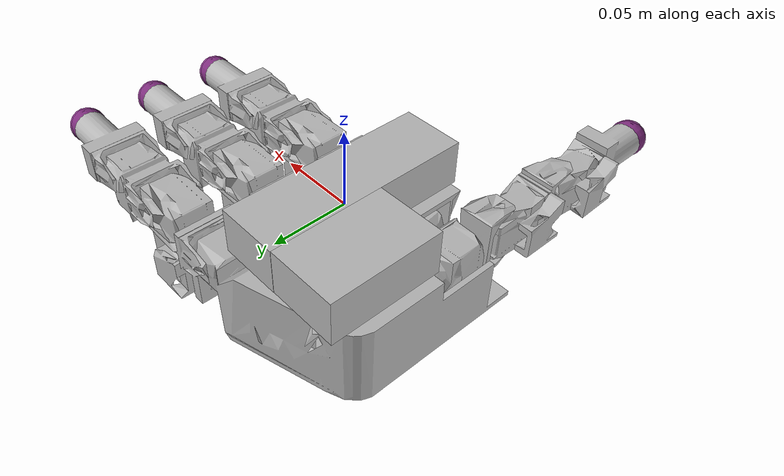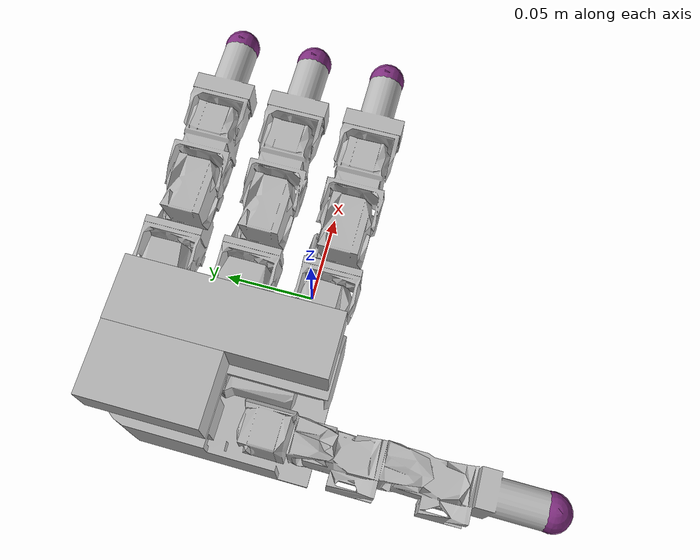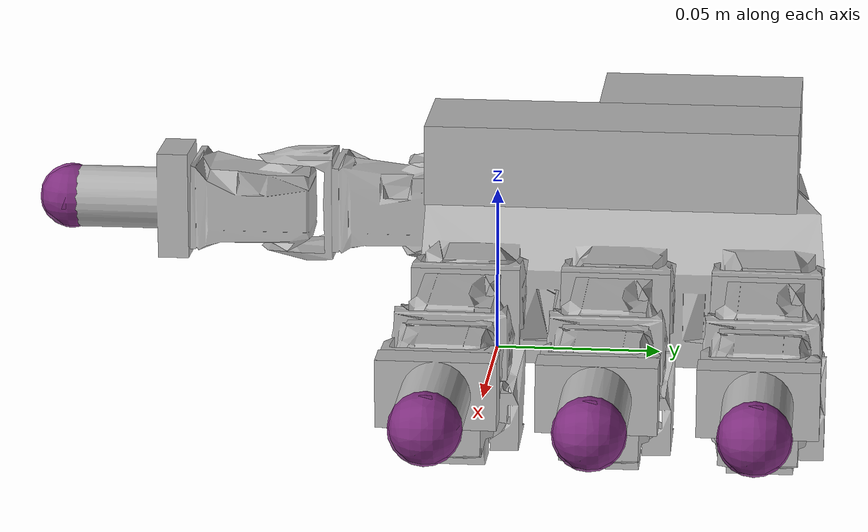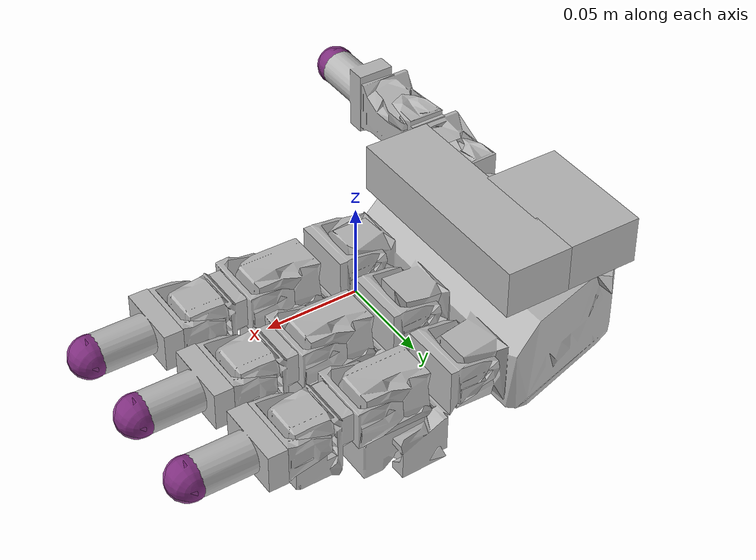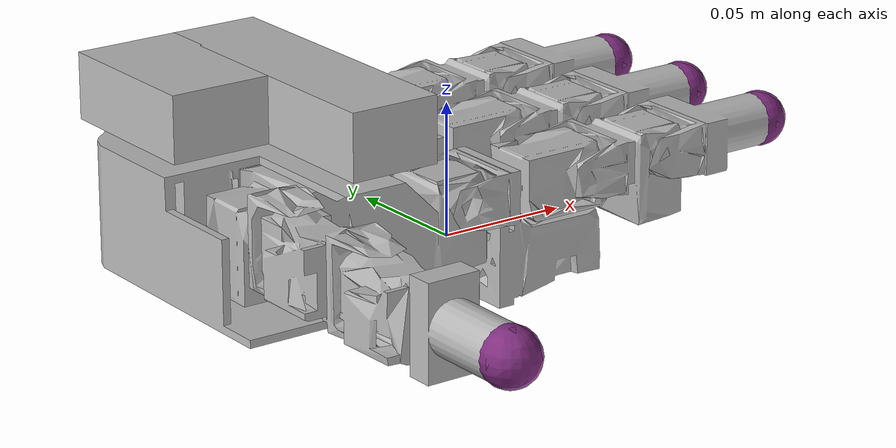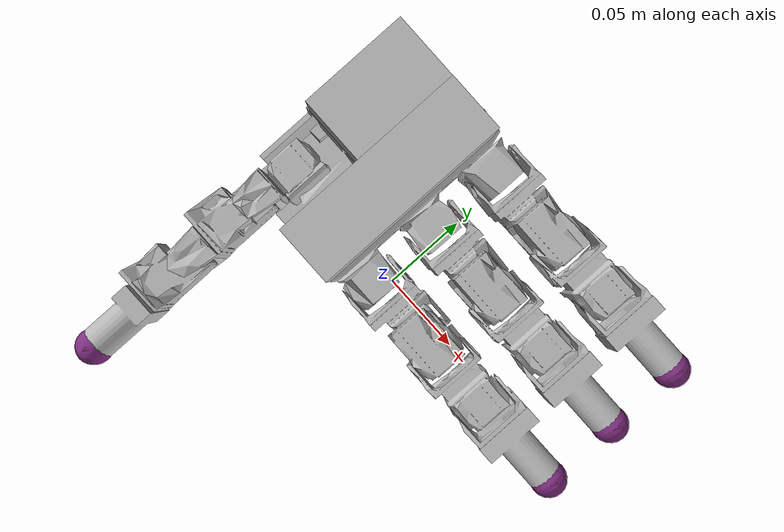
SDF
<sdf version='1.7'>
    <!--
      The original collision model is disabled.
      The collision model is replaced with a sphere.
    -->
    <model name='leap_hand_right'>
      <link name='hand_root'>
        <pose relative_to='__model__'>0 0 0 3.14159 -0 0</pose>
        <inertial>
          <pose>0 0 0 0 -0 0</pose>
          <mass>0.237</mass>
          <inertia>
            <ixx>0.000354094</ixx>
            <ixy>-1.193e-06</ixy>
            <ixz>-2.445e-06</ixz>
            <iyy>0.000260915</iyy>
            <iyz>-2.905e-06</iyz>
            <izz>0.000529257</izz>
          </inertia>
        </inertial>
        <visual name='palm_lower_visual'>
          <pose>-0.020095 0.025758 -0.034722 0 -0 0</pose>
          <geometry>
            <mesh>
              <scale>1 1 1</scale>
              <uri>package://drake_models/leap_hand_description/urdf/leap_hand/mesh/simple_obj/palm_lower.obj</uri>
            </mesh>
          </geometry>
        </visual>
        <visual name='palm_lower_visual_1'>
          <pose>-0.039595 -0.032758 -0.051 0 -0 0</pose>
          <geometry>
            <box>
              <size>0.035 0.115 0.025</size>
            </box>
          </geometry>
        </visual>
        <visual name='palm_lower_visual_2'>
          <pose>-0.075952 -0.058578 -0.051 0 -0 0</pose>
          <geometry>
            <box>
              <size>0.04 0.063 0.025</size>
            </box>
          </geometry>
        </visual>
      </link>
      <joint name='joint_1' type='revolute'>
        <pose relative_to='hand_root'>-0.007095 0.023058 -0.018722 1.5708 1.5708 0</pose>
        <parent>hand_root</parent>
        <child>mcp_joint</child>
        <axis>
          <xyz>0 0 -1</xyz>
          <limit>
            <lower>-0.314</lower>
            <upper>2.23</upper>
            <effort>0.95</effort>
            <velocity>8.48</velocity>
          </limit>
          <dynamics>
            <spring_reference>0</spring_reference>
            <spring_stiffness>0</spring_stiffness>
          </dynamics>
        </axis>
      </joint>
      <link name='mcp_joint'>
        <pose relative_to='joint_1'>0 0 0 0 -0 0</pose>
        <inertial>
          <pose>0 0 0 0 -0 0</pose>
          <mass>0.044</mass>
          <inertia>
            <ixx>1.1499e-05</ixx>
            <ixy>3.049e-06</ixy>
            <ixz>1.21e-07</ixz>
            <iyy>7.796e-06</iyy>
            <iyz>1.12e-07</iyz>
            <izz>1.4759e-05</izz>
          </inertia>
        </inertial>
        <visual name='mcp_joint_visual'>
          <pose>0.008407 0.007766 0.014657 0 -0 0</pose>
          <geometry>
            <mesh>
              <scale>1 1 1</scale>
              <uri>package://drake_models/leap_hand_description/urdf/leap_hand/mesh/simple_obj/mcp_joint.obj</uri>
            </mesh>
          </geometry>
        </visual>
      </link>
      <joint name='joint_0' type='revolute'>
        <pose relative_to='mcp_joint'>-0.0122 0.0381 0.0145 -1.5708 -0 1.5708</pose>
        <parent>mcp_joint</parent>
        <child>pip</child>
        <axis>
          <xyz>0 0 -1</xyz>
          <limit>
            <lower>-1.047</lower>
            <upper>1.047</upper>
            <effort>0.95</effort>
            <velocity>8.48</velocity>
          </limit>
          <dynamics>
            <damping>0.003</damping>
            <friction>0</friction>
            <spring_reference>0</spring_reference>
            <spring_stiffness>0</spring_stiffness>
          </dynamics>
        </axis>
      </joint>
      <link name='pip'>
        <pose relative_to='joint_0'>0 0 0 0 -0 0</pose>
        <inertial>
          <pose>0 0 0 0 -0 0</pose>
          <mass>0.032</mass>
          <inertia>
            <ixx>4.798e-06</ixx>
            <ixy>1.2e-08</ixy>
            <ixz>4e-09</ixz>
            <iyy>2.862e-06</iyy>
            <iyz>1.1e-08</iyz>
            <izz>4.234e-06</izz>
          </inertia>
        </inertial>
        <visual name='pip_visual'>
          <pose>0.009643 0.0003 0.000784 -1.5708 -1.5708 0</pose>
          <geometry>
            <mesh>
              <scale>1 1 1</scale>
              <uri>package://drake_models/leap_hand_description/urdf/leap_hand/mesh/simple_obj/pip.obj</uri>
            </mesh>
          </geometry>
        </visual>
      </link>
      <joint name='joint_2' type='revolute'>
        <pose relative_to='pip'>0.015 0.0143 -0.013 1.5708 -1.5708 0</pose>
        <parent>pip</parent>
        <child>dip</child>
        <axis>
          <xyz>0 0 -1</xyz>
          <limit>
            <lower>-0.506</lower>
            <upper>1.885</upper>
            <effort>0.95</effort>
            <velocity>8.48</velocity>
          </limit>
          <dynamics>
            <spring_reference>0</spring_reference>
            <spring_stiffness>0</spring_stiffness>
          </dynamics>
        </axis>
      </joint>
      <link name='dip'>
        <pose relative_to='joint_2'>0 0 0 0 -0 0</pose>
        <inertial>
          <pose>0 0 0 0 -0 0</pose>
          <mass>0.037</mass>
          <inertia>
            <ixx>5.542e-06</ixx>
            <ixy>-6.07e-07</ixy>
            <ixz>-1.7e-08</ixz>
            <iyy>5.727e-06</iyy>
            <iyz>-2.3e-08</iyz>
            <izz>6.682e-06</izz>
          </inertia>
        </inertial>
        <visual name='dip_visual'>
          <pose>0.021133 -0.008432 0.009785 -3.14159 0 0</pose>
          <geometry>
            <mesh>
              <scale>1 1 1</scale>
              <uri>package://drake_models/leap_hand_description/urdf/leap_hand/mesh/simple_obj/dip.obj</uri>
            </mesh>
          </geometry>
        </visual>
      </link>
      <joint name='joint_3' type='revolute'>
        <pose relative_to='dip'>-0 -0.0361 0.0002 0 -0 0</pose>
        <parent>dip</parent>
        <child>fingertip</child>
        <axis>
          <xyz>0 0 -1</xyz>
          <limit>
            <lower>-0.366</lower>
            <upper>2.042</upper>
            <effort>0.95</effort>
            <velocity>8.48</velocity>
          </limit>
          <dynamics>
            <spring_reference>0</spring_reference>
            <spring_stiffness>0</spring_stiffness>
          </dynamics>
        </axis>
      </joint>
      <link name='fingertip'>
        <pose relative_to='joint_3'>0 0 0 0 -0 0</pose>
        <inertial>
          <pose>0 -0 0 0 -0 0</pose>
          <mass>0.016</mass>
          <inertia>
            <ixx>3.3681e-06</ixx>
            <ixy>1.15e-07</ixy>
            <ixz>0</ixz>
            <iyy>1.5561e-06</iyy>
            <iyz>2.465e-14</iyz>
            <izz>2.8631e-06</izz>
          </inertia>
        </inertial>
        <collision name="fingertip_collision">
          <pose>0 -0.0565 0.0145 0 0 0</pose>
          <geometry>
            <sphere>
              <radius>0.0105</radius>
            </sphere>
          </geometry>
        </collision>
        <visual name="fingertip_collision_visual">
          <pose>0 -0.0565 0.0145 0 0 0</pose>
          <geometry>
            <sphere>
              <radius>0.0105</radius>
            </sphere>
          </geometry>
          <material>
            <diffuse>0.5 0.1 0.5 0.8</diffuse>
          </material>
        </visual>
        <visual name='fingertip_visual'>
          <pose>0.013286 -0.006114 0.0145 3.14159 0 0</pose>
          <geometry>
            <mesh>
              <scale>1 1 1</scale>
              <uri>package://drake_models/leap_hand_description/urdf/leap_hand/mesh/simple_obj/fingertip_base.obj</uri>
            </mesh>
          </geometry>
        </visual>
        <visual name='fingertip_new_visual_1'>
          <pose>0 -0.017 0.0145 -3.14159 1.5708 0</pose>
          <geometry>
            <mesh>
              <scale>1 1 1</scale>
              <uri>package://drake_models/leap_hand_description/urdf/leap_hand/mesh/simple_obj/fingertip_custom.obj</uri>
            </mesh>
          </geometry>
        </visual>
      </link>
      <joint name='joint_12' type='revolute'>
        <pose relative_to='hand_root'>-0.069395 -0.001242 -0.021622 -0 1.5708 0</pose>
        <parent>hand_root</parent>
        <child>pip_4</child>
        <axis>
          <xyz>0 0 -1</xyz>
          <limit>
            <lower>-0.349</lower>
            <upper>2.094</upper>
            <effort>0.95</effort>
            <velocity>8.48</velocity>
          </limit>
          <dynamics>
            <spring_reference>0</spring_reference>
            <spring_stiffness>0</spring_stiffness>
          </dynamics>
        </axis>
      </joint>
      <link name='pip_4'>
        <pose relative_to='joint_12'>0 0 0 0 -0 0</pose>
        <inertial>
          <pose>0 0 0 0 -0 0</pose>
          <mass>0.032</mass>
          <inertia>
            <ixx>4.798e-06</ixx>
            <ixy>1.2e-08</ixy>
            <ixz>4e-09</ixz>
            <iyy>2.862e-06</iyy>
            <iyz>1.1e-08</iyz>
            <izz>4.234e-06</izz>
          </inertia>
        </inertial>
        <visual name='pip_4_visual'>
          <pose>-0.005357 0.0003 0.000784 -1.5708 -1.5708 0</pose>
          <geometry>
            <mesh>
              <scale>1 1 1</scale>
              <uri>package://drake_models/leap_hand_description/urdf/leap_hand/mesh/simple_obj/pip.obj</uri>
            </mesh>
          </geometry>
        </visual>
      </link>
      <joint name='joint_13' type='revolute'>
        <pose relative_to='pip_4'>-0 0.0143 -0.013 1.5708 -1.5708 0</pose>
        <parent>pip_4</parent>
        <child>thumb_pip</child>
        <axis>
          <xyz>0 0 -1</xyz>
          <limit>
            <lower>-0.47</lower>
            <upper>2.443</upper>
            <effort>0.95</effort>
            <velocity>8.48</velocity>
          </limit>
          <dynamics>
            <spring_reference>0</spring_reference>
            <spring_stiffness>0</spring_stiffness>
          </dynamics>
        </axis>
      </joint>
      <link name='thumb_pip'>
        <pose relative_to='joint_13'>0 0 0 0 -0 0</pose>
        <inertial>
          <pose>0 0 0 0 -0 0</pose>
          <mass>0.003</mass>
          <inertia>
            <ixx>5.93e-07</ixx>
            <ixy>0</ixy>
            <ixz>0</ixz>
            <iyy>5.49e-07</iyy>
            <iyz>0</iyz>
            <izz>2.24e-07</izz>
          </inertia>
        </inertial>
        <visual name='thumb_pip_visual'>
          <pose>0.011962 -0 -0.015853 1.5708 0 -0</pose>
          <geometry>
            <mesh>
              <scale>1 1 1</scale>
              <uri>package://drake_models/leap_hand_description/urdf/leap_hand/mesh/simple_obj/thumb_pip.obj</uri>
            </mesh>
          </geometry>
        </visual>
      </link>
      <joint name='joint_14' type='revolute'>
        <pose relative_to='thumb_pip'>0 0.0145 -0.017 -1.5708 0 -0</pose>
        <parent>thumb_pip</parent>
        <child>thumb_dip</child>
        <axis>
          <xyz>0 0 -1</xyz>
          <limit>
            <lower>-1.2</lower>
            <upper>1.9</upper>
            <effort>0.95</effort>
            <velocity>8.48</velocity>
          </limit>
          <dynamics>
            <spring_reference>0</spring_reference>
            <spring_stiffness>0</spring_stiffness>
          </dynamics>
        </axis>
      </joint>
      <link name='thumb_dip'>
        <pose relative_to='joint_14'>0 0 0 0 -0 0</pose>
        <inertial>
          <pose>0 0 0 0 -0 0</pose>
          <mass>0.038</mass>
          <inertia>
            <ixx>8.474e-06</ixx>
            <ixy>2.41e-07</ixy>
            <ixz>2.6e-08</ixz>
            <iyy>3.841e-06</iyy>
            <iyz>2.5e-08</iyz>
            <izz>7.679e-06</izz>
          </inertia>
        </inertial>
        <visual name='thumb_dip_visual'>
          <pose>0.043969 0.057953 -0.008629 0 0 0</pose>
          <geometry>
            <mesh>
              <scale>1 1 1</scale>
              <uri>package://drake_models/leap_hand_description/urdf/leap_hand/mesh/simple_obj/thumb_dip.obj</uri>
            </mesh>
          </geometry>
        </visual>
      </link>
      <joint name='joint_15' type='revolute'>
        <pose relative_to='thumb_dip'>-0 0.0466 0.0002 0 0 3.14159</pose>
        <parent>thumb_dip</parent>
        <child>thumb_fingertip</child>
        <axis>
          <xyz>0 0 -1</xyz>
          <limit>
            <lower>-1.34</lower>
            <upper>1.88</upper>
            <effort>0.95</effort>
            <velocity>8.48</velocity>
          </limit>
          <dynamics>
            <spring_reference>0</spring_reference>
            <spring_stiffness>0</spring_stiffness>
          </dynamics>
        </axis>
      </joint>
      <link name='thumb_fingertip'>
        <pose relative_to='joint_15'>0 0 0 0 -0 0</pose>
        <inertial>
          <pose>0 -0 -0 0 -0 0</pose>
          <mass>0.049</mass>
          <inertia>
            <ixx>2.03721e-05</ixx>
            <ixy>-4.89e-07</ixy>
            <ixz>-3e-08</ixz>
            <iyy>4.3361e-06</iyy>
            <iyz>-9.7e-08</iyz>
            <izz>1.98451e-05</izz>
          </inertia>
        </inertial>
        <collision name="thumb_fingertip_collision">
          <pose>0 -0.0695 -0.0145 0 0 0</pose>
          <geometry>
            <sphere>
              <radius>0.0105</radius>
            </sphere>
          </geometry>
        </collision>
        <visual name="thumb_fingertip_collision_visual">
          <pose>0 -0.0695 -0.0145 0 0 0</pose>
          <geometry>
            <sphere>
              <radius>0.0105</radius>
            </sphere>
          </geometry>
          <material>
            <diffuse>0.5 0.1 0.5 0.8</diffuse>
          </material>
        </visual>
        <visual name='thumb_fingertip_visual'>
          <pose>0.06256 0.07846 0.048993 0 -0 0</pose>
          <geometry>
            <mesh>
              <scale>1 1 1</scale>
              <uri>package://drake_models/leap_hand_description/urdf/leap_hand/mesh/simple_obj/thumb_fingertip_base.obj</uri>
            </mesh>
          </geometry>
        </visual>
        <visual name='thumb_fingertip_new_visual_1'>
          <pose>0 -0.03 -0.0145 -3.14159 1.5708 0</pose>
          <geometry>
            <mesh>
              <scale>1 1 1</scale>
              <uri>package://drake_models/leap_hand_description/urdf/leap_hand/mesh/simple_obj/fingertip_custom.obj</uri>
            </mesh>
          </geometry>
        </visual>
      </link>
      <joint name='joint_5' type='revolute'>
        <pose relative_to='hand_root'>-0.007095 -0.022392 -0.018722 1.5708 1.5708 0</pose>
        <parent>hand_root</parent>
        <child>mcp_joint_2</child>
        <axis>
          <xyz>0 0 -1</xyz>
          <limit>
            <lower>-0.314</lower>
            <upper>2.23</upper>
            <effort>0.95</effort>
            <velocity>8.48</velocity>
          </limit>
          <dynamics>
            <spring_reference>0</spring_reference>
            <spring_stiffness>0</spring_stiffness>
          </dynamics>
        </axis>
      </joint>
      <link name='mcp_joint_2'>
        <pose relative_to='joint_5'>0 0 0 0 -0 0</pose>
        <inertial>
          <pose>0 0 0 0 -0 0</pose>
          <mass>0.044</mass>
          <inertia>
            <ixx>1.1499e-05</ixx>
            <ixy>3.049e-06</ixy>
            <ixz>1.21e-07</ixz>
            <iyy>7.796e-06</iyy>
            <iyz>1.12e-07</iyz>
            <izz>1.4759e-05</izz>
          </inertia>
        </inertial>
        <visual name='mcp_joint_2_visual'>
          <pose>0.008407 0.007766 0.014657 0 -0 0</pose>
          <geometry>
            <mesh>
              <scale>1 1 1</scale>
              <uri>package://drake_models/leap_hand_description/urdf/leap_hand/mesh/simple_obj/mcp_joint.obj</uri>
            </mesh>
          </geometry>
        </visual>
      </link>
      <joint name='joint_4' type='revolute'>
        <pose relative_to='mcp_joint_2'>-0.0122 0.0381 0.0145 -1.5708 -0 1.5708</pose>
        <parent>mcp_joint_2</parent>
        <child>pip_2</child>
        <axis>
          <xyz>0 0 -1</xyz>
          <limit>
            <lower>-1.047</lower>
            <upper>1.047</upper>
            <effort>0.95</effort>
            <velocity>8.48</velocity>
          </limit>
          <dynamics>
            <spring_reference>0</spring_reference>
            <spring_stiffness>0</spring_stiffness>
          </dynamics>
        </axis>
      </joint>
      <link name='pip_2'>
        <pose relative_to='joint_4'>0 0 0 0 -0 0</pose>
        <inertial>
          <pose>0 0 0 0 -0 0</pose>
          <mass>0.032</mass>
          <inertia>
            <ixx>4.798e-06</ixx>
            <ixy>1.2e-08</ixy>
            <ixz>4e-09</ixz>
            <iyy>2.862e-06</iyy>
            <iyz>1.1e-08</iyz>
            <izz>4.234e-06</izz>
          </inertia>
        </inertial>
        <visual name='pip_2_visual'>
          <pose>0.009643 0.0003 0.000784 -1.5708 -1.5708 0</pose>
          <geometry>
            <mesh>
              <scale>1 1 1</scale>
              <uri>package://drake_models/leap_hand_description/urdf/leap_hand/mesh/simple_obj/pip.obj</uri>
            </mesh>
          </geometry>
        </visual>
      </link>
      <joint name='joint_6' type='revolute'>
        <pose relative_to='pip_2'>0.015 0.0143 -0.013 1.5708 -1.5708 0</pose>
        <parent>pip_2</parent>
        <child>dip_2</child>
        <axis>
          <xyz>0 0 -1</xyz>
          <limit>
            <lower>-0.506</lower>
            <upper>1.885</upper>
            <effort>0.95</effort>
            <velocity>8.48</velocity>
          </limit>
          <dynamics>
            <spring_reference>0</spring_reference>
            <spring_stiffness>0</spring_stiffness>
          </dynamics>
        </axis>
      </joint>
      <link name='dip_2'>
        <pose relative_to='joint_6'>0 0 0 0 -0 0</pose>
        <inertial>
          <pose>0 0 0 0 -0 0</pose>
          <mass>0.037</mass>
          <inertia>
            <ixx>5.542e-06</ixx>
            <ixy>-6.07e-07</ixy>
            <ixz>-1.7e-08</ixz>
            <iyy>5.727e-06</iyy>
            <iyz>-2.3e-08</iyz>
            <izz>6.682e-06</izz>
          </inertia>
        </inertial>
        <visual name='dip_2_visual'>
          <pose>0.021133 -0.008432 0.009785 -3.14159 0 0</pose>
          <geometry>
            <mesh>
              <scale>1 1 1</scale>
              <uri>package://drake_models/leap_hand_description/urdf/leap_hand/mesh/simple_obj/dip.obj</uri>
            </mesh>
          </geometry>
        </visual>
      </link>
      <joint name='joint_7' type='revolute'>
        <pose relative_to='dip_2'>0 -0.0361 0.0002 0 -0 0</pose>
        <parent>dip_2</parent>
        <child>fingertip_2</child>
        <axis>
          <xyz>0 0 -1</xyz>
          <limit>
            <lower>-0.366</lower>
            <upper>2.042</upper>
            <effort>0.95</effort>
            <velocity>8.48</velocity>
          </limit>
          <dynamics>
            <spring_reference>0</spring_reference>
            <spring_stiffness>0</spring_stiffness>
          </dynamics>
        </axis>
      </joint>
      <link name='fingertip_2'>
        <pose relative_to='joint_7'>0 0 0 0 -0 0</pose>
        <inertial>
          <pose>0 -0 0 0 -0 0</pose>
          <mass>0.016</mass>
          <inertia>
            <ixx>3.3681e-06</ixx>
            <ixy>1.15e-07</ixy>
            <ixz>0</ixz>
            <iyy>1.5561e-06</iyy>
            <iyz>2.465e-14</iyz>
            <izz>2.8631e-06</izz>
          </inertia>
        </inertial>
        <collision name="fingertip_2_collision">
          <pose>0 -0.0565 0.0145 0 0 0</pose>
          <geometry>
            <sphere>
              <radius>0.0105</radius>
            </sphere>
          </geometry>
        </collision>
        <visual name="fingertip_2_collision_visual">
          <pose>0 -0.0565 0.0145 0 0 0</pose>
          <geometry>
            <sphere>
              <radius>0.0105</radius>
            </sphere>
          </geometry>
          <material>
            <diffuse>0.5 0.1 0.5 0.8</diffuse>
          </material>
        </visual>
        <visual name='fingertip_2_visual'>
          <pose>0.013286 -0.006114 0.0145 3.14159 -0 0</pose>
          <geometry>
            <mesh>
              <scale>1 1 1</scale>
              <uri>package://drake_models/leap_hand_description/urdf/leap_hand/mesh/simple_obj/fingertip_base.obj</uri>
            </mesh>
          </geometry>
        </visual>
        <visual name='fingertip_2_new_visual_1'>
          <pose>0 -0.017 0.0145 -3.14159 1.5708 0</pose>
          <geometry>
            <mesh>
              <scale>1 1 1</scale>
              <uri>package://drake_models/leap_hand_description/urdf/leap_hand/mesh/simple_obj/fingertip_custom.obj</uri>
            </mesh>
          </geometry>
        </visual>
      </link>
      <joint name='joint_9' type='revolute'>
        <pose relative_to='hand_root'>-0.007095 -0.067842 -0.018722 1.5708 1.5708 0</pose>
        <parent>hand_root</parent>
        <child>mcp_joint_3</child>
        <axis>
          <xyz>0 0 -1</xyz>
          <limit>
            <lower>-0.314</lower>
            <upper>2.23</upper>
            <effort>0.95</effort>
            <velocity>8.48</velocity>
          </limit>
          <dynamics>
            <spring_reference>0</spring_reference>
            <spring_stiffness>0</spring_stiffness>
          </dynamics>
        </axis>
      </joint>
      <link name='mcp_joint_3'>
        <pose relative_to='joint_9'>0 0 0 0 -0 0</pose>
        <inertial>
          <pose>0 0 0 0 -0 0</pose>
          <mass>0.044</mass>
          <inertia>
            <ixx>1.1499e-05</ixx>
            <ixy>3.049e-06</ixy>
            <ixz>1.21e-07</ixz>
            <iyy>7.796e-06</iyy>
            <iyz>1.12e-07</iyz>
            <izz>1.4759e-05</izz>
          </inertia>
        </inertial>
        <visual name='mcp_joint_3_visual'>
          <pose>0.008407 0.007766 0.014657 0 -0 0</pose>
          <geometry>
            <mesh>
              <scale>1 1 1</scale>
              <uri>package://drake_models/leap_hand_description/urdf/leap_hand/mesh/simple_obj/mcp_joint.obj</uri>
            </mesh>
          </geometry>
        </visual>
      </link>
      <joint name='joint_8' type='revolute'>
        <pose relative_to='mcp_joint_3'>-0.0122 0.0381 0.0145 -1.5708 -0 1.5708</pose>
        <parent>mcp_joint_3</parent>
        <child>pip_3</child>
        <axis>
          <xyz>0 0 -1</xyz>
          <limit>
            <lower>-1.047</lower>
            <upper>1.047</upper>
            <effort>0.95</effort>
            <velocity>8.48</velocity>
          </limit>
          <dynamics>
            <spring_reference>0</spring_reference>
            <spring_stiffness>0</spring_stiffness>
          </dynamics>
        </axis>
      </joint>
      <link name='pip_3'>
        <pose relative_to='joint_8'>0 0 0 0 -0 0</pose>
        <inertial>
          <pose>0 0 0 0 -0 0</pose>
          <mass>0.032</mass>
          <inertia>
            <ixx>4.798e-06</ixx>
            <ixy>1.2e-08</ixy>
            <ixz>4e-09</ixz>
            <iyy>2.862e-06</iyy>
            <iyz>1.1e-08</iyz>
            <izz>4.234e-06</izz>
          </inertia>
        </inertial>
        <visual name='pip_3_visual'>
          <pose>0.009643 0.0003 0.000784 -1.5708 -1.5708 0</pose>
          <geometry>
            <mesh>
              <scale>1 1 1</scale>
              <uri>package://drake_models/leap_hand_description/urdf/leap_hand/mesh/simple_obj/pip.obj</uri>
            </mesh>
          </geometry>
        </visual>
      </link>
      <joint name='joint_10' type='revolute'>
        <pose relative_to='pip_3'>0.015 0.0143 -0.013 1.5708 -1.5708 0</pose>
        <parent>pip_3</parent>
        <child>dip_3</child>
        <axis>
          <xyz>0 0 -1</xyz>
          <limit>
            <lower>-0.506</lower>
            <upper>1.885</upper>
            <effort>0.95</effort>
            <velocity>8.48</velocity>
          </limit>
          <dynamics>
            <spring_reference>0</spring_reference>
            <spring_stiffness>0</spring_stiffness>
          </dynamics>
        </axis>
      </joint>
      <link name='dip_3'>
        <pose relative_to='joint_10'>0 0 0 0 -0 0</pose>
        <inertial>
          <pose>0 0 0 0 -0 0</pose>
          <mass>0.037</mass>
          <inertia>
            <ixx>5.542e-06</ixx>
            <ixy>-6.07e-07</ixy>
            <ixz>-1.7e-08</ixz>
            <iyy>5.727e-06</iyy>
            <iyz>-2.3e-08</iyz>
            <izz>6.682e-06</izz>
          </inertia>
        </inertial>
        <visual name='dip_3_visual'>
          <pose>0.021133 -0.008432 0.009785 -3.14159 -0 0</pose>
          <geometry>
            <mesh>
              <scale>1 1 1</scale>
              <uri>package://drake_models/leap_hand_description/urdf/leap_hand/mesh/simple_obj/dip.obj</uri>
            </mesh>
          </geometry>
        </visual>
      </link>
      <joint name='joint_11' type='revolute'>
        <pose relative_to='dip_3'>0 -0.0361 0.0002 0 -0 0</pose>
        <parent>dip_3</parent>
        <child>fingertip_3</child>
        <axis>
          <xyz>0 0 -1</xyz>
          <limit>
            <lower>-0.366</lower>
            <upper>2.042</upper>
            <effort>0.95</effort>
            <velocity>8.48</velocity>
          </limit>
          <dynamics>
            <spring_reference>0</spring_reference>
            <spring_stiffness>0</spring_stiffness>
          </dynamics>
        </axis>
      </joint>
      <link name='fingertip_3'>
        <pose relative_to='joint_11'>0 0 0 0 -0 0</pose>
        <inertial>
          <pose>0 -0 0 0 -0 0</pose>
          <mass>0.016</mass>
          <inertia>
            <ixx>3.3681e-06</ixx>
            <ixy>1.15e-07</ixy>
            <ixz>0</ixz>
            <iyy>1.5561e-06</iyy>
            <iyz>2.465e-14</iyz>
            <izz>2.8631e-06</izz>
          </inertia>
        </inertial>
        <collision name="fingertip_3_collision">
          <pose>0 -0.0565 0.0145 0 0 0</pose>
          <geometry>
            <sphere>
              <radius>0.0105</radius>
            </sphere>
          </geometry>
        </collision>
        <visual name="fingertip_3_collision_visual">
          <pose>0 -0.0565 0.0145 0 0 0</pose>
          <geometry>
            <sphere>
              <radius>0.0105</radius>
            </sphere>
          </geometry>
          <material>
            <diffuse>0.5 0.1 0.5 0.8</diffuse>
          </material>
        </visual>
        <visual name='fingertip_3_visual'>
          <pose>0.013286 -0.006114 0.0145 3.14159 0 0</pose>
          <geometry>
            <mesh>
              <scale>1 1 1</scale>
              <uri>package://drake_models/leap_hand_description/urdf/leap_hand/mesh/simple_obj/fingertip_base.obj</uri>
            </mesh>
          </geometry>
        </visual>
        <visual name='fingertip_3_new_visual_1'>
          <pose>0 -0.017 0.0145 -3.14159 1.5708 0</pose>
          <geometry>
            <mesh>
              <scale>1 1 1</scale>
              <uri>package://drake_models/leap_hand_description/urdf/leap_hand/mesh/simple_obj/fingertip_custom.obj</uri>
            </mesh>
          </geometry>
        </visual>
      </link>

      <!-- Add Drake features -->
      <!-- collision filter group -->
      <drake:collision_filter_group name="leap_hand">
        <drake:member>hand_root</drake:member>
        <drake:member>mcp_joint</drake:member>
        <drake:member>pip</drake:member>
        <drake:member>dip</drake:member>
        <drake:member>fingertip</drake:member>
        <drake:member>mcp_joint_2</drake:member>
        <drake:member>pip_2</drake:member>
        <drake:member>dip_2</drake:member>
        <drake:member>fingertip_2</drake:member>
        <drake:member>mcp_joint_3</drake:member>
        <drake:member>pip_3</drake:member>
        <drake:member>dip_3</drake:member>
        <drake:member>fingertip_3</drake:member>
        <drake:member>pip_4</drake:member>
        <drake:member>thumb_pip</drake:member>
        <drake:member>thumb_dip</drake:member>
        <drake:member>thumb_fingertip</drake:member>
        <drake:ignored_collision_filter_group>leap_hand</drake:ignored_collision_filter_group>
      </drake:collision_filter_group>

    </model>
  </sdf>
